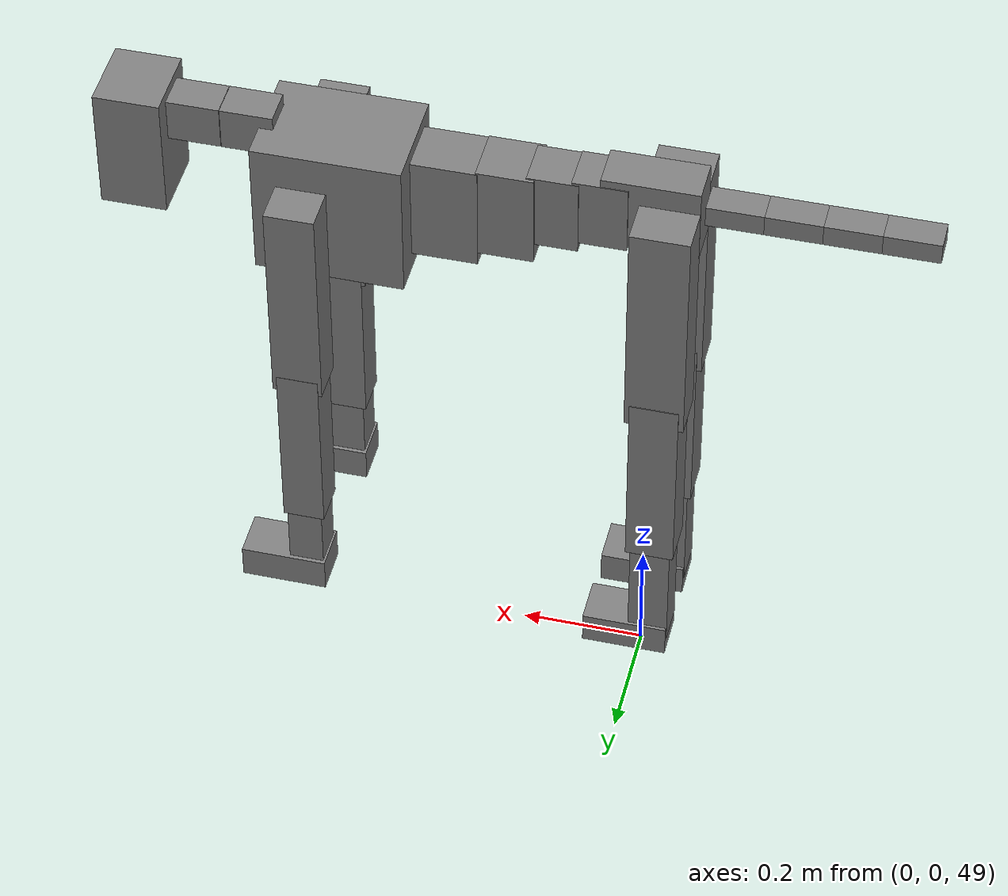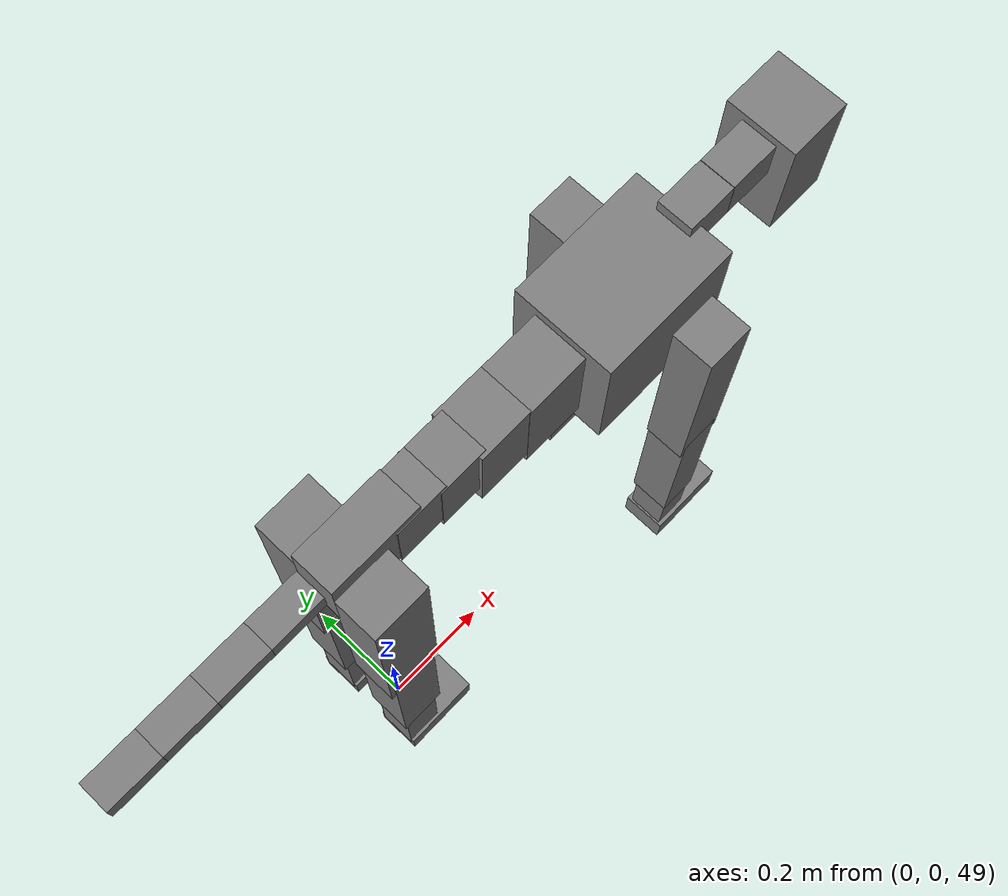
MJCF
<mujoco model="dog">

    <default>
        <joint armature="0.02" stiffness="1" damping="0.2" limited="true" />
        <geom condim="3" friction="1 0.05 0.05" margin="0.01" />
        <motor ctrllimited="true" ctrlrange="-1.0 1.0" forcelimited="true" gear="50" />
    </default>

    <compiler inertiafromgeom="true" angle="radian" />

    <option timestep="0.016" iterations="50" tolerance="1e-10" solver="Newton" jacobian="dense" cone="pyramidal" />

    <size nconmax="20000" njmax="60000" nstack="5000000" />
    <visual>
        <map force="0.1" zfar="30" />
        <rgba haze="0.15 0.25 0.35 1" />
        <quality shadowsize="2048" />
        <global offwidth="800" offheight="800" />
    </visual>

    <asset>
        <texture type="skybox" builtin="gradient" rgb1="0.3 0.5 0.7" rgb2="0 0 0" width="512" height="512" />
        <texture name="texplane" type="2d" builtin="checker" rgb1=".2 .3 .4" rgb2=".1 0.15 0.2" width="512" height="512" mark="cross" markrgb=".8 .8 .8" />
        <texture name="texgeom" type="cube" builtin="flat" mark="cross" width="127" height="1278" rgb1="0.8 0.6 0.4" rgb2="0.8 0.6 0.4" markrgb="1 1 1" random="0.01" />

        <material name="matplane" reflectance="0.3" texture="texplane" texrepeat="1 1" texuniform="true" />
        <material name="matgeom" texture="texgeom" texuniform="true" rgba="0.8 0.6 .4 1" />
    </asset>

    <worldbody>
        <geom name="floor" pos="0 0 0" size="0 0 .25" type="plane" material="matplane" condim="3" />

        <light directional="false" diffuse=".2 .2 .2" specular="0 0 0" pos="0 0 5" dir="0 0 -1" castshadow="false" />
        <light mode="targetbodycom" target="torso" directional="false" diffuse=".8 .8 .8" specular="0.3 0.3 0.3" pos="0 0 4.0" dir="0 0 -1" />

        <body name="root" pos="0 0 50">
            <freejoint name="root_1" />
            <geom type="box" pos="0 0 -0.02" size="0.0774  0.0358  0.063" density="2030" />

            <body name="spine1" pos="0.054 0 0">
                <joint name="spine1_y" axis="0 1 0" range="0 0.7" limited="true" />
                <geom type="box" pos="0.02375 0 -0.03" size="0.04375  0.0375  0.05985" density="2030" />

                <body name="spine2" pos="0.0612 0 0">
                    <joint name="spine2_y" axis="0 1 0" range="-0.15 0.15" limited="true" />
                    <geom type="box" pos="0.03555  0  -0.04" size="0.04055  0.039  0.06615" density="2030" />

                    <body name="spine3" pos="0.0730 0 0">
                        <joint name="spine3_y" axis="0 1 0" range="-0.15 0.15" limited="true" />
                        <geom type="box" pos="0.03555  0  -0.057" size="0.04555  0.0445  0.081" density="2030" />

                        <body name="spine4" pos="0.0780 0 0">
                            <joint name="spine4_y" axis="0 1 0" range="-0.15 0.15" limited="true" />
                            <geom type="box" pos="0.05265  0  -0.07" size="0.05265  0.045  0.09135" density="2030" />

                            <body name="torso" pos="0.1082 0 0">
                                <joint name="torso_y" axis="0 1 0" range="-0.15 0.15" limited="true" />
                                <geom type="box" pos="0.11925  0  -0.085" size="0.11925  0.085  0.11745" density="2030" />

                                <body name="neck1" pos="0.2160  0   0.0180">
                                    <joint name="neck1_y" axis="0 1 0" range="-1.2  -1" limited="true" />
                                    <geom type="box" pos="0.0423  0  0" size="0.0423  0.03  0.036" density="2325" />

                                    <body name="neck2" pos="0.0853  0  0">
                                        <joint name="neck2_y" axis="0 1 0" range="0.1  0" limited="true" />
                                        <geom type="box" pos="0.0423  0  0" size="0.0423  0.03  0.036" density="2325" />

                                        <body name="head" pos="0.0853  0  0">
                                            <joint name="head_y" axis="0 1 0" range="-0.3  -0.2" limited="true" />
                                            <geom type="box" pos="0.0531  0  -0.055" size="0.0531  0.06  0.1044" density="4030" />

                                        </body>
                                    </body>
                                </body>

                                <body name="front_shoulder" pos="0.156  0   -0.0480">
                                    <joint name="front_shoulder_y" axis="0 1 0" range="-1 1.5" limited="true" />
                                    <geom type="box" pos="0 0.13 -0.1565" size="0.0399  0.0341  0.1831" density="1158" />
                                    <geom type="box" pos="0 -0.13 -0.1565" size="0.0399  0.0341  0.1831" density="1158" />

                                    <body name="front_elbow" pos="0  0  -0.3130">
                                        <joint name="front_elbow_y" axis="0 1 0" range="-2 0" limited="true" />
                                        <geom type="box" pos="0 0.13 -0.1540" size="0.0336  0.0344  0.1540" density="1081" />
                                        <geom type="box" pos="0 -0.13 -0.1540" size="0.0336  0.0344  0.1540" density="1081" />

                                        <body name="front_wrist" pos="0  0  -0.3080">
                                            <joint name="front_wrist_y" axis="0 1 0" range="-0.2 0" limited="true" />
                                            <geom type="box" pos="0 0.13 -0.0585" size="0.0283  0.0314  0.0717" density="1664" />
                                            <geom type="box" pos="0 -0.13 -0.0585" size="0.0283  0.0314  0.0717" density="1664" />

                                            <body name="front_finger_end" pos="0  0  -0.1171">
                                                <joint name="front_finger_y" axis="0 1 0" range="-0.4 1" limited="true" />
                                                <geom type="box" pos="0.0382  0.13  -0.0132" size="0.0701  0.0382  0.0282" density="1515" />
                                                <geom type="box" pos="0.0382  -0.13  -0.0132" size="0.0701  0.0382  0.0282" density="1515" />

                                            </body>

                                        </body>
                                    </body>
                                </body>

                            </body>
                        </body>
                    </body>
                </body>
            </body>

            <body name="back_hip" pos="-0.03 0 -0.018">
                <joint name="back_hip_y" axis="0 1 0" range="-1.5 0.3" limited="true" />
                <geom type="box" pos="0 0.07 -0.1738" size="0.0473  0.0371  0.1966" density="1154" />
                <geom type="box" pos="0 -0.07 -0.1738" size="0.0473  0.0371  0.1966" density="1154" />

                <body name="back_knee" pos="0  0  -0.3475">
                    <joint name="back_knee_y" axis="0 1 0" range="0 2.8" limited="true" />
                    <geom type="box" pos="0 0.07 -0.1498" size="0.0392  0.0386  0.1654" density="1227" />
                    <geom type="box" pos="0 -0.07 -0.1498" size="0.0392  0.0386  0.1654" density="1227" />

                    <body name="back_ankle" pos="0  0  -0.2997">
                        <joint name="back_ankle_y" axis="0 1 0" range="-2.2 0" limited="true" />
                        <geom type="box" pos="0 0.07 -0.1016" size="0.0325  0.0325  0.1129" density="1284" />
                        <geom type="box" pos="0 -0.07 -0.1016" size="0.0325  0.0325  0.1129" density="1284" />

                        <body name="back_toe_end" pos="0  0  -0.2032">
                            <joint name="back_toe_y" axis="0 1 0" range="-0.4 1" limited="true" />
                            <geom type="box" pos="0.0379  0.07  -0.0123" size="0.0694  0.0379  0.0273" density="1515" />
                            <geom type="box" pos="0.0379  -0.07  -0.0123" size="0.0694  0.0379  0.0273" density="1515" />

                        </body>
                    </body>
                </body>
            </body>

            <body name="tail1" pos="-0.074 0 -0.006">
                <joint name="tail1_y" axis="0 1 0" range="-0.2 0.2" limited="true" />
                <geom type="box" pos="-0.0536  0  0" size="0.045  0.025  0.0175" density="1587" />

                <body name="tail2" pos="-0.09 0 0">
                    <joint name="tail2_y" axis="0 1 0" range="-0.2 0.2" limited="true" />
                    <geom type="box" pos="-0.0536  0  0" size="0.045  0.025  0.0175" density="1587" />

                    <body name="tail3" pos="-0.09 0 0">
                        <joint name="tail3_y" axis="0 1 0" range="-0.2 0.2" limited="true" />
                        <geom type="box" pos="-0.0536  0  0" size="0.045  0.025  0.0175" density="1587" />

                        <body name="tail4" pos="-0.09 0 0">
                            <joint name="tail4_y" axis="0 1 0" range="-0.2 0.2" limited="true" />
                            <geom type="box" pos="-0.0536  0  0" size="0.045  0.025  0.0175" density="1587" />

                        </body>
                    </body>
                </body>
            </body>
        </body>
    </worldbody>

    <actuator>
        <motor joint="spine1_y" forcerange="-150 150     " />
        <motor joint="spine2_y" forcerange="-150 150     " />
        <motor joint="spine3_y" forcerange="-150 150     " />
        <motor joint="spine4_y" forcerange="-150 150     " />
        <motor joint="torso_y" forcerange="-150 150     " />
        <motor joint="neck1_y" forcerange="-100 100       " />
        <motor joint="neck2_y" forcerange="-100 100       " />
        <motor joint="head_y" forcerange="-150 150       " />
        <motor joint="front_shoulder_y" forcerange="-168.68 158.85" />
        <motor joint="front_elbow_y" forcerange="-175.78 174.18" />
        <motor joint="front_wrist_y" forcerange="-144.45 107.02" />
        <motor joint="front_finger_y" forcerange="-89.49 74.36" />
        <motor joint="back_hip_y" forcerange="-300.52 393.71" />
        <motor joint="back_knee_y" forcerange="-369.42 392.33" />
        <motor joint="back_angle_y" forcerange="-241.95 178.28" />
        <motor joint="back_toe_y" forcerange="-122.63 100.38" />
        <motor joint="tail1_y" forcerange="-50 50     " />
        <motor joint="tail2_y" forcerange="-50 50     " />
        <motor joint="tail3_y" forcerange="-50 50     " />
        <motor joint="tail4_y" forcerange="-50 50     " />
    </actuator>
</mujoco>
